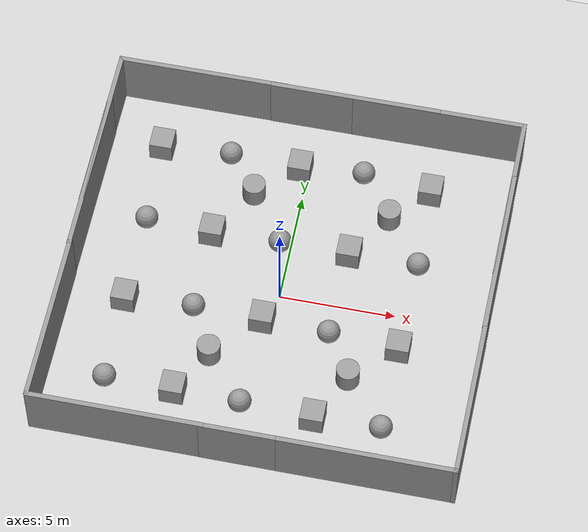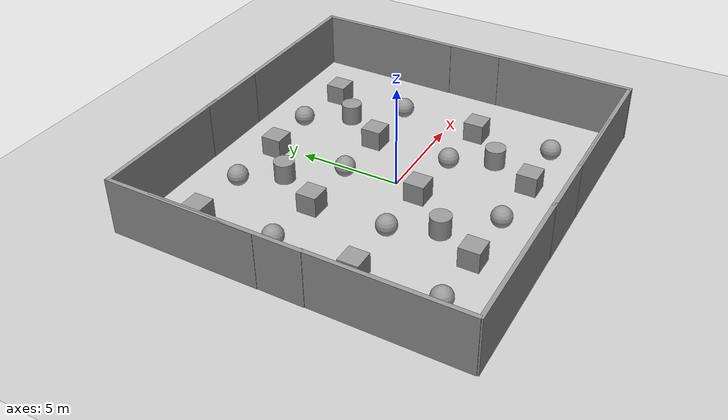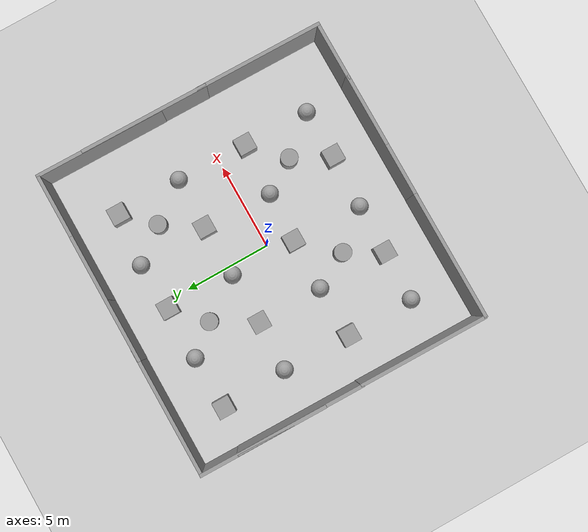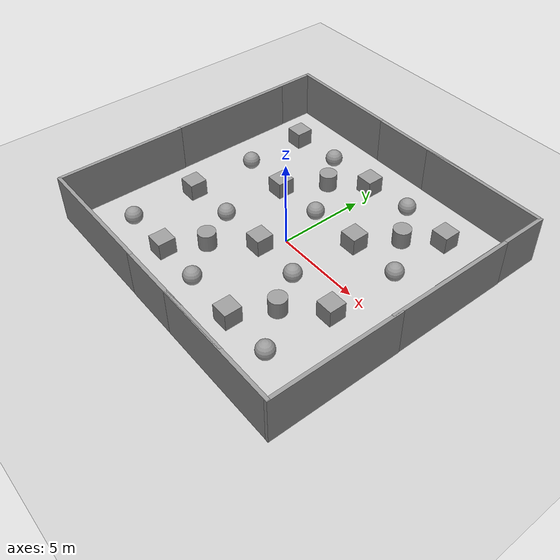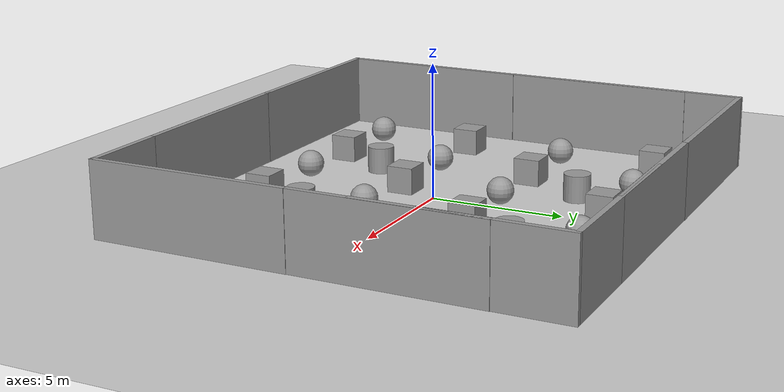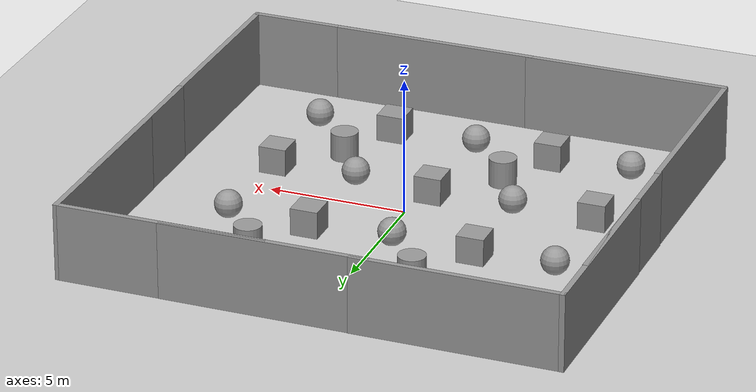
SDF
<sdf version="1.6">
 <world name="chase">
  <light name="sun" type="directional">
   <pose>0 0 10 0 -0 0</pose>
   <diffuse>0.8 0.8 0.8 1</diffuse>
   <specular>0.1 0.1 0.1 1</specular>
   <attenuation>
    <range>1000</range>
    <constant>0.9</constant>
    <linear>0.01</linear>
    <quadratic>0.001</quadratic>
   </attenuation>
   <direction>-0.5 0.5 -1</direction>
  </light>
  <model name="ground_plane">
   <static>1</static>
   <link name="link">
    <collision name="collision">
     <geometry><plane><normal>0 0 1</normal><size>100 100</size></plane></geometry>
     <surface><friction><ode><mu>100</mu><mu2>50</mu2></ode></friction></surface>
    </collision>
    <visual name="visual">
     <cast_shadows>0</cast_shadows>
     <geometry><plane><normal>0 0 1</normal><size>100 100</size></plane></geometry>
     <material>
      <script><uri>file://media/materials/scripts/gazebo.material</uri><name>Gazebo/Grey</name></script>
     </material>
    </visual>
   </link>
  </model>
  <gravity>0 0 -9.8</gravity>
  <magnetic_field>6e-06 2.3e-05 -4.2e-05</magnetic_field>
  <atmosphere type="adiabatic"/>
  <physics name="default_physics" default="0" type="ode">
   <max_step_size>0.001</max_step_size>
   <real_time_factor>1</real_time_factor>
   <real_time_update_rate>1000</real_time_update_rate>
  </physics>
  <scene><ambient>0.4 0.4 0.4 1</ambient><background>0.7 0.7 0.7 1</background><shadows>1</shadows></scene>
  <spherical_coordinates>
   <surface_model>EARTH_WGS84</surface_model>
   <latitude_deg>0</latitude_deg>
   <longitude_deg>0</longitude_deg>
   <elevation>0</elevation>
   <heading_deg>0</heading_deg>
  </spherical_coordinates>
  <model name="grey_wall">
   <static>1</static>
   <link name="link">
    <pose>0 0 1.4 0 -0 0</pose>
    <collision name="collision"><geometry><box><size>7.5 0.2 2.8</size></box></geometry></collision>
    <visual name="visual">
     <cast_shadows>0</cast_shadows>
     <geometry><box><size>7.5 0.2 2.8</size></box></geometry>
     <material>
      <script>
       <uri>model://grey_wall/materials/scripts</uri>
       <uri>model://grey_wall/materials/textures</uri>
       <name>vrc/grey_wall</name>
      </script>
     </material>
    </visual>
   </link>
   <pose>-5.31955 -8.0721 0 0 -0 0</pose>
  </model>
  <model name="grey_wall_clone">
   <static>1</static>
   <link name="link">
    <pose>0 0 1.4 0 -0 0</pose>
    <collision name="collision"><geometry><box><size>7.5 0.2 2.8</size></box></geometry></collision>
    <visual name="visual">
     <cast_shadows>0</cast_shadows>
     <geometry><box><size>7.5 0.2 2.8</size></box></geometry>
     <material>
      <script>
       <uri>model://grey_wall/materials/scripts</uri>
       <uri>model://grey_wall/materials/textures</uri>
       <name>vrc/grey_wall</name>
      </script>
     </material>
    </visual>
   </link>
   <pose>1.94381 -8.08113 0 0 -0 0</pose>
  </model>
  <model name="grey_wall_clone_0">
   <static>1</static>
   <link name="link">
    <pose>0 0 1.4 0 -0 0</pose>
    <collision name="collision"><geometry><box><size>7.5 0.2 2.8</size></box></geometry></collision>
    <visual name="visual">
     <cast_shadows>0</cast_shadows>
     <geometry><box><size>7.5 0.2 2.8</size></box></geometry>
     <material>
      <script>
       <uri>model://grey_wall/materials/scripts</uri>
       <uri>model://grey_wall/materials/textures</uri>
       <name>vrc/grey_wall</name>
      </script>
     </material>
    </visual>
   </link>
   <pose>5.18635 -8.08529 0 0 -0 0</pose>
  </model>
  <model name="grey_wall_clone_1">
   <static>1</static>
   <link name="link">
    <pose>0 0 1.4 0 -0 0</pose>
    <collision name="collision"><geometry><box><size>7.5 0.2 2.8</size></box></geometry></collision>
    <visual name="visual">
     <cast_shadows>0</cast_shadows>
     <geometry><box><size>7.5 0.2 2.8</size></box></geometry>
     <material>
      <script>
       <uri>model://grey_wall/materials/scripts</uri>
       <uri>model://grey_wall/materials/textures</uri>
       <name>vrc/grey_wall</name>
      </script>
     </material>
    </visual>
   </link>
   <pose>-5.2187 8.89135 0 0 -0 0</pose>
  </model>
  <model name="grey_wall_clone_2">
   <static>1</static>
   <link name="link">
    <pose>0 0 1.4 0 -0 0</pose>
    <collision name="collision"><geometry><box><size>7.5 0.2 2.8</size></box></geometry></collision>
    <visual name="visual">
     <cast_shadows>0</cast_shadows>
     <geometry><box><size>7.5 0.2 2.8</size></box></geometry>
     <material>
      <script>
       <uri>model://grey_wall/materials/scripts</uri>
       <uri>model://grey_wall/materials/textures</uri>
       <name>vrc/grey_wall</name>
      </script>
     </material>
    </visual>
   </link>
   <pose>1.56864 8.87538 0 0 -0 0</pose>
  </model>
  <model name="grey_wall_clone_2_clone">
   <static>1</static>
   <link name="link">
    <pose>0 0 1.4 0 -0 0</pose>
    <collision name="collision"><geometry><box><size>7.5 0.2 2.8</size></box></geometry></collision>
    <visual name="visual">
     <cast_shadows>0</cast_shadows>
     <geometry><box><size>7.5 0.2 2.8</size></box></geometry>
     <material>
      <script>
       <uri>model://grey_wall/materials/scripts</uri>
       <uri>model://grey_wall/materials/textures</uri>
       <name>vrc/grey_wall</name>
      </script>
     </material>
    </visual>
   </link>
   <pose>5.21808 8.86699 0 0 -0 0</pose>
  </model>
  <model name="grey_wall_clone_2_clone_0">
   <static>1</static>
   <link name="link">
    <pose>0 0 1.4 0 -0 0</pose>
    <collision name="collision"><geometry><box><size>7.5 0.2 2.8</size></box></geometry></collision>
    <visual name="visual">
     <cast_shadows>0</cast_shadows>
     <geometry><box><size>7.5 0.2 2.8</size></box></geometry>
     <material>
      <script>
       <uri>model://grey_wall/materials/scripts</uri>
       <uri>model://grey_wall/materials/textures</uri>
       <name>vrc/grey_wall</name>
      </script>
     </material>
    </visual>
   </link>
   <pose>-8.96704 -4.34279 0 0 0 -1.58054</pose>
  </model>
  <model name="grey_wall_clone_2_clone_0_clone">
   <static>1</static>
   <link name="link">
    <pose>0 0 1.4 0 -0 0</pose>
    <collision name="collision"><geometry><box><size>7.5 0.2 2.8</size></box></geometry></collision>
    <visual name="visual">
     <cast_shadows>0</cast_shadows>
     <geometry><box><size>7.5 0.2 2.8</size></box></geometry>
     <material>
      <script>
       <uri>model://grey_wall/materials/scripts</uri>
       <uri>model://grey_wall/materials/textures</uri>
       <name>vrc/grey_wall</name>
      </script>
     </material>
    </visual>
   </link>
   <pose>-8.91912 2.99652 0 0 0 -1.58054</pose>
  </model>
  <model name="grey_wall_clone_2_clone_0_clone_0">
   <static>1</static>
   <link name="link">
    <pose>0 0 1.4 0 -0 0</pose>
    <collision name="collision"><geometry><box><size>7.5 0.2 2.8</size></box></geometry></collision>
    <visual name="visual">
     <cast_shadows>0</cast_shadows>
     <geometry><box><size>7.5 0.2 2.8</size></box></geometry>
     <material>
      <script>
       <uri>model://grey_wall/materials/scripts</uri>
       <uri>model://grey_wall/materials/textures</uri>
       <name>vrc/grey_wall</name>
      </script>
     </material>
    </visual>
   </link>
   <pose>-8.91563 5.24699 0 0 0 -1.58054</pose>
  </model>
  <model name="grey_wall_clone_2_clone_0_clone_1">
   <static>1</static>
   <link name="link">
    <pose>0 0 1.4 0 -0 0</pose>
    <collision name="collision"><geometry><box><size>7.5 0.2 2.8</size></box></geometry></collision>
    <visual name="visual">
     <cast_shadows>0</cast_shadows>
     <geometry><box><size>7.5 0.2 2.8</size></box></geometry>
     <material>
      <script>
       <uri>model://grey_wall/materials/scripts</uri>
       <uri>model://grey_wall/materials/textures</uri>
       <name>vrc/grey_wall</name>
      </script>
     </material>
    </visual>
   </link>
   <pose>8.91344 -4.44352 0 0 0 -1.58054</pose>
  </model>
  <model name="grey_wall_clone_2_clone_0_clone_2">
   <static>1</static>
   <link name="link">
    <pose>0 0 1.4 0 -0 0</pose>
    <collision name="collision"><geometry><box><size>7.5 0.2 2.8</size></box></geometry></collision>
    <visual name="visual">
     <cast_shadows>0</cast_shadows>
     <geometry><box><size>7.5 0.2 2.8</size></box></geometry>
     <material>
      <script>
       <uri>model://grey_wall/materials/scripts</uri>
       <uri>model://grey_wall/materials/textures</uri>
       <name>vrc/grey_wall</name>
      </script>
     </material>
    </visual>
   </link>
   <pose>8.96392 2.48264 0 0 0 -1.58054</pose>
  </model>
  <model name="grey_wall_clone_2_clone_0_clone_3">
   <static>1</static>
   <link name="link">
    <pose>0 0 1.4 0 -0 0</pose>
    <collision name="collision"><geometry><box><size>7.5 0.2 2.8</size></box></geometry></collision>
    <visual name="visual">
     <cast_shadows>0</cast_shadows>
     <geometry><box><size>7.5 0.2 2.8</size></box></geometry>
     <material>
      <script>
       <uri>model://grey_wall/materials/scripts</uri>
       <uri>model://grey_wall/materials/textures</uri>
       <name>vrc/grey_wall</name>
      </script>
     </material>
    </visual>
   </link>
   <pose>8.96917 5.20949 0 0 0 -1.58054</pose>
  </model>
  <model name="unit_box_1">
   <pose>-3.49397 -5.4374 0.499995 -1e-05 0 0</pose>
   <link name="link">
    <inertial>
     <mass>1</mass>
     <inertia>
      <ixx>0.166667</ixx>
      <ixy>0</ixy>
      <ixz>0</ixz>
      <iyy>0.166667</iyy>
      <iyz>0</iyz>
      <izz>0.166667</izz>
     </inertia>
    </inertial>
    <collision name="collision"><geometry><box><size>1 1 1</size></box></geometry></collision>
    <visual name="visual">
     <geometry><box><size>1 1 1</size></box></geometry>
     <material>
      <script><name>Gazebo/Grey</name><uri>file://media/materials/scripts/gazebo.material</uri></script>
     </material>
    </visual>
   </link>
  </model>
  <model name="unit_box_3">
   <pose>2.51566 -5.59157 0.499995 -1e-05 0 0</pose>
   <link name="link">
    <inertial>
     <mass>1</mass>
     <inertia>
      <ixx>0.166667</ixx>
      <ixy>0</ixy>
      <ixz>0</ixz>
      <iyy>0.166667</iyy>
      <iyz>0</iyz>
      <izz>0.166667</izz>
     </inertia>
    </inertial>
    <collision name="collision"><geometry><box><size>1 1 1</size></box></geometry></collision>
    <visual name="visual">
     <geometry><box><size>1 1 1</size></box></geometry>
     <material>
      <script><name>Gazebo/Grey</name><uri>file://media/materials/scripts/gazebo.material</uri></script>
     </material>
    </visual>
   </link>
  </model>
  <model name="unit_box_6">
   <pose>-6.47649 -1.48881 0.499995 0 -1e-05 0</pose>
   <link name="link">
    <inertial>
     <mass>1</mass>
     <inertia>
      <ixx>0.166667</ixx>
      <ixy>0</ixy>
      <ixz>0</ixz>
      <iyy>0.166667</iyy>
      <iyz>0</iyz>
      <izz>0.166667</izz>
     </inertia>
    </inertial>
    <collision name="collision"><geometry><box><size>1 1 1</size></box></geometry></collision>
    <visual name="visual">
     <geometry><box><size>1 1 1</size></box></geometry>
     <material>
      <script><name>Gazebo/Grey</name><uri>file://media/materials/scripts/gazebo.material</uri></script>
     </material>
    </visual>
   </link>
  </model>
  <model name="unit_box_7">
   <pose>-0.500146 -1.38682 0.499995 -1e-05 0 0</pose>
   <link name="link">
    <inertial>
     <mass>1</mass>
     <inertia>
      <ixx>0.166667</ixx>
      <ixy>0</ixy>
      <ixz>0</ixz>
      <iyy>0.166667</iyy>
      <iyz>0</iyz>
      <izz>0.166667</izz>
     </inertia>
    </inertial>
    <collision name="collision"><geometry><box><size>1 1 1</size></box></geometry></collision>
    <visual name="visual">
     <geometry><box><size>1 1 1</size></box></geometry>
     <material>
      <script><name>Gazebo/Grey</name><uri>file://media/materials/scripts/gazebo.material</uri></script>
     </material>
    </visual>
   </link>
  </model>
  <model name="unit_box_10">
   <pose>-6.53838 6.33009 0.499995 0 -1e-05 0</pose>
   <link name="link">
    <inertial>
     <mass>1</mass>
     <inertia>
      <ixx>0.166667</ixx>
      <ixy>0</ixy>
      <ixz>0</ixz>
      <iyy>0.166667</iyy>
      <iyz>0</iyz>
      <izz>0.166667</izz>
     </inertia>
    </inertial>
    <collision name="collision"><geometry><box><size>1 1 1</size></box></geometry></collision>
    <visual name="visual">
     <geometry><box><size>1 1 1</size></box></geometry>
     <material>
      <script><name>Gazebo/Grey</name><uri>file://media/materials/scripts/gazebo.material</uri></script>
     </material>
    </visual>
   </link>
  </model>
  <model name="unit_box_11">
   <pose>-3.48163 2.41511 0.499995 -1e-05 0 0</pose>
   <link name="link">
    <inertial>
     <mass>1</mass>
     <inertia>
      <ixx>0.166667</ixx>
      <ixy>0</ixy>
      <ixz>0</ixz>
      <iyy>0.166667</iyy>
      <iyz>0</iyz>
      <izz>0.166667</izz>
     </inertia>
    </inertial>
    <collision name="collision"><geometry><box><size>1 1 1</size></box></geometry></collision>
    <visual name="visual">
     <geometry><box><size>1 1 1</size></box></geometry>
     <material>
      <script><name>Gazebo/Grey</name><uri>file://media/materials/scripts/gazebo.material</uri></script>
     </material>
    </visual>
   </link>
  </model>
  <model name="unit_box_13">
   <pose>2.52991 2.51567 0.499995 -1e-05 0 0</pose>
   <link name="link">
    <inertial>
     <mass>1</mass>
     <inertia>
      <ixx>0.166667</ixx>
      <ixy>0</ixy>
      <ixz>0</ixz>
      <iyy>0.166667</iyy>
      <iyz>0</iyz>
      <izz>0.166667</izz>
     </inertia>
    </inertial>
    <collision name="collision"><geometry><box><size>1 1 1</size></box></geometry></collision>
    <visual name="visual">
     <geometry><box><size>1 1 1</size></box></geometry>
     <material>
      <script><name>Gazebo/Grey</name><uri>file://media/materials/scripts/gazebo.material</uri></script>
     </material>
    </visual>
   </link>
  </model>
  <model name="unit_box_15">
   <pose>5.43386 -1.65291 0.499995 -1e-05 0 0</pose>
   <link name="link">
    <inertial>
     <mass>1</mass>
     <inertia>
      <ixx>0.166667</ixx>
      <ixy>0</ixy>
      <ixz>0</ixz>
      <iyy>0.166667</iyy>
      <iyz>0</iyz>
      <izz>0.166667</izz>
     </inertia>
    </inertial>
    <collision name="collision"><geometry><box><size>1 1 1</size></box></geometry></collision>
    <visual name="visual">
     <geometry><box><size>1 1 1</size></box></geometry>
     <material>
      <script><name>Gazebo/Grey</name><uri>file://media/materials/scripts/gazebo.material</uri></script>
     </material>
    </visual>
   </link>
  </model>
  <model name="unit_box_17">
   <pose>-0.376264 6.39191 0.499995 -1e-05 0 0</pose>
   <link name="link">
    <inertial>
     <mass>1</mass>
     <inertia>
      <ixx>0.166667</ixx>
      <ixy>0</ixy>
      <ixz>0</ixz>
      <iyy>0.166667</iyy>
      <iyz>0</iyz>
      <izz>0.166667</izz>
     </inertia>
    </inertial>
    <collision name="collision"><geometry><box><size>1 1 1</size></box></geometry></collision>
    <visual name="visual">
     <geometry><box><size>1 1 1</size></box></geometry>
     <material>
      <script><name>Gazebo/Grey</name><uri>file://media/materials/scripts/gazebo.material</uri></script>
     </material>
    </visual>
   </link>
  </model>
  <model name="unit_box_19">
   <pose>5.44874 6.2703 0.499995 1e-05 -0 0</pose>
   <link name="link">
    <inertial>
     <mass>1</mass>
     <inertia>
      <ixx>0.166667</ixx>
      <ixy>0</ixy>
      <ixz>0</ixz>
      <iyy>0.166667</iyy>
      <iyz>0</iyz>
      <izz>0.166667</izz>
     </inertia>
    </inertial>
    <collision name="collision"><geometry><box><size>1 1 1</size></box></geometry></collision>
    <visual name="visual">
     <geometry><box><size>1 1 1</size></box></geometry>
     <material>
      <script><name>Gazebo/Grey</name><uri>file://media/materials/scripts/gazebo.material</uri></script>
     </material>
    </visual>
   </link>
  </model>
  <model name="unit_sphere_0">
   <pose>-6.39698 2.49343 0.5 0 -0 0</pose>
   <link name="link">
    <inertial>
     <mass>1</mass>
     <inertia><ixx>0.1</ixx><ixy>0</ixy><ixz>0</ixz><iyy>0.1</iyy><iyz>0</iyz><izz>0.1</izz></inertia>
    </inertial>
    <collision name="collision"><geometry><sphere><radius>0.5</radius></sphere></geometry></collision>
    <visual name="visual">
     <geometry><sphere><radius>0.5</radius></sphere></geometry>
     <material>
      <script><name>Gazebo/Grey</name><uri>file://media/materials/scripts/gazebo.material</uri></script>
     </material>
    </visual>
   </link>
  </model>
  <model name="unit_sphere_1">
   <pose>-3.47508 6.4347 0.5 0 -0 0</pose>
   <link name="link">
    <inertial>
     <mass>1</mass>
     <inertia><ixx>0.1</ixx><ixy>0</ixy><ixz>0</ixz><iyy>0.1</iyy><iyz>0</iyz><izz>0.1</izz></inertia>
    </inertial>
    <collision name="collision"><geometry><sphere><radius>0.5</radius></sphere></geometry></collision>
    <visual name="visual">
     <geometry><sphere><radius>0.5</radius></sphere></geometry>
     <material>
      <script><name>Gazebo/Grey</name><uri>file://media/materials/scripts/gazebo.material</uri></script>
     </material>
    </visual>
   </link>
  </model>
  <model name="unit_sphere_2">
   <pose>-6.44581 -5.43443 0.5 0 -0 0</pose>
   <link name="link">
    <inertial>
     <mass>1</mass>
     <inertia><ixx>0.1</ixx><ixy>0</ixy><ixz>0</ixz><iyy>0.1</iyy><iyz>0</iyz><izz>0.1</izz></inertia>
    </inertial>
    <collision name="collision"><geometry><sphere><radius>0.5</radius></sphere></geometry></collision>
    <visual name="visual">
     <geometry><sphere><radius>0.5</radius></sphere></geometry>
     <material>
      <script><name>Gazebo/Grey</name><uri>file://media/materials/scripts/gazebo.material</uri></script>
     </material>
    </visual>
   </link>
  </model>
  <model name="unit_sphere_3">
   <pose>-3.48772 -1.38318 0.5 0 -0 0</pose>
   <link name="link">
    <inertial>
     <mass>1</mass>
     <inertia><ixx>0.1</ixx><ixy>0</ixy><ixz>0</ixz><iyy>0.1</iyy><iyz>0</iyz><izz>0.1</izz></inertia>
    </inertial>
    <collision name="collision"><geometry><sphere><radius>0.5</radius></sphere></geometry></collision>
    <visual name="visual">
     <geometry><sphere><radius>0.5</radius></sphere></geometry>
     <material>
      <script><name>Gazebo/Grey</name><uri>file://media/materials/scripts/gazebo.material</uri></script>
     </material>
    </visual>
   </link>
  </model>
  <model name="unit_sphere_4">
   <pose>-0.617832 -5.51488 0.5 0 -0 0</pose>
   <link name="link">
    <inertial>
     <mass>1</mass>
     <inertia><ixx>0.1</ixx><ixy>0</ixy><ixz>0</ixz><iyy>0.1</iyy><iyz>0</iyz><izz>0.1</izz></inertia>
    </inertial>
    <collision name="collision"><geometry><sphere><radius>0.5</radius></sphere></geometry></collision>
    <visual name="visual">
     <geometry><sphere><radius>0.5</radius></sphere></geometry>
     <material>
      <script><name>Gazebo/Grey</name><uri>file://media/materials/scripts/gazebo.material</uri></script>
     </material>
    </visual>
   </link>
  </model>
  <model name="unit_sphere_5">
   <pose>2.4122 -1.53892 0.5 0 -0 0</pose>
   <link name="link">
    <inertial>
     <mass>1</mass>
     <inertia><ixx>0.1</ixx><ixy>0</ixy><ixz>0</ixz><iyy>0.1</iyy><iyz>0</iyz><izz>0.1</izz></inertia>
    </inertial>
    <collision name="collision"><geometry><sphere><radius>0.5</radius></sphere></geometry></collision>
    <visual name="visual">
     <geometry><sphere><radius>0.5</radius></sphere></geometry>
     <material>
      <script><name>Gazebo/Grey</name><uri>file://media/materials/scripts/gazebo.material</uri></script>
     </material>
    </visual>
   </link>
  </model>
  <model name="unit_sphere_6">
   <pose>5.38998 -5.55849 0.5 0 -0 0</pose>
   <link name="link">
    <inertial>
     <mass>1</mass>
     <inertia><ixx>0.1</ixx><ixy>0</ixy><ixz>0</ixz><iyy>0.1</iyy><iyz>0</iyz><izz>0.1</izz></inertia>
    </inertial>
    <collision name="collision"><geometry><sphere><radius>0.5</radius></sphere></geometry></collision>
    <visual name="visual">
     <geometry><sphere><radius>0.5</radius></sphere></geometry>
     <material>
      <script><name>Gazebo/Grey</name><uri>file://media/materials/scripts/gazebo.material</uri></script>
     </material>
    </visual>
   </link>
  </model>
  <model name="unit_sphere_7">
   <pose>5.55234 2.47338 0.5 0 -0 0</pose>
   <link name="link">
    <inertial>
     <mass>1</mass>
     <inertia><ixx>0.1</ixx><ixy>0</ixy><ixz>0</ixz><iyy>0.1</iyy><iyz>0</iyz><izz>0.1</izz></inertia>
    </inertial>
    <collision name="collision"><geometry><sphere><radius>0.5</radius></sphere></geometry></collision>
    <visual name="visual">
     <geometry><sphere><radius>0.5</radius></sphere></geometry>
     <material>
      <script><name>Gazebo/Grey</name><uri>file://media/materials/scripts/gazebo.material</uri></script>
     </material>
    </visual>
   </link>
  </model>
  <model name="unit_sphere_8">
   <pose>2.42668 6.57079 0.5 0 -0 0</pose>
   <link name="link">
    <inertial>
     <mass>1</mass>
     <inertia><ixx>0.1</ixx><ixy>0</ixy><ixz>0</ixz><iyy>0.1</iyy><iyz>0</iyz><izz>0.1</izz></inertia>
    </inertial>
    <collision name="collision"><geometry><sphere><radius>0.5</radius></sphere></geometry></collision>
    <visual name="visual">
     <geometry><sphere><radius>0.5</radius></sphere></geometry>
     <material>
      <script><name>Gazebo/Grey</name><uri>file://media/materials/scripts/gazebo.material</uri></script>
     </material>
    </visual>
   </link>
  </model>
  <model name="unit_sphere_9">
   <pose>-0.493625 2.44691 0.5 0 -0 0</pose>
   <link name="link">
    <inertial>
     <mass>1</mass>
     <inertia><ixx>0.1</ixx><ixy>0</ixy><ixz>0</ixz><iyy>0.1</iyy><iyz>0</iyz><izz>0.1</izz></inertia>
    </inertial>
    <collision name="collision"><geometry><sphere><radius>0.5</radius></sphere></geometry></collision>
    <visual name="visual">
     <geometry><sphere><radius>0.5</radius></sphere></geometry>
     <material>
      <script><name>Gazebo/Grey</name><uri>file://media/materials/scripts/gazebo.material</uri></script>
     </material>
    </visual>
   </link>
  </model>
  <model name="unit_cylinder_0_0">
   <pose>-2.38465 -3.41205 0.499993 -3e-06 -3e-06 0</pose>
   <link name="link">
    <inertial>
     <mass>1</mass>
     <inertia><ixx>0.145833</ixx><ixy>0</ixy><ixz>0</ixz><iyy>0.145833</iyy><iyz>0</iyz><izz>0.125</izz></inertia>
    </inertial>
    <collision name="collision">
     <geometry><cylinder><radius>0.5</radius><length>1</length></cylinder></geometry>
    </collision>
    <visual name="visual">
     <geometry><cylinder><radius>0.5</radius><length>1</length></cylinder></geometry>
     <material>
      <script><name>Gazebo/Grey</name><uri>file://media/materials/scripts/gazebo.material</uri></script>
     </material>
    </visual>
   </link>
  </model>
  <model name="unit_cylinder_0_1">
   <pose>-2.11282 4.77255 0.499997 3e-06 4e-06 -0</pose>
   <link name="link">
    <inertial>
     <mass>1</mass>
     <inertia><ixx>0.145833</ixx><ixy>0</ixy><ixz>0</ixz><iyy>0.145833</iyy><iyz>0</iyz><izz>0.125</izz></inertia>
    </inertial>
    <collision name="collision">
     <geometry><cylinder><radius>0.5</radius><length>1</length></cylinder></geometry>
    </collision>
    <visual name="visual">
     <geometry><cylinder><radius>0.5</radius><length>1</length></cylinder></geometry>
     <material>
      <script><name>Gazebo/Grey</name><uri>file://media/materials/scripts/gazebo.material</uri></script>
     </material>
    </visual>
   </link>
  </model>
  <model name="unit_cylinder_0_2">
   <pose>3.58841 -3.41944 0.499993 -3e-06 -4e-06 -0</pose>
   <link name="link">
    <inertial>
     <mass>1</mass>
     <inertia><ixx>0.145833</ixx><ixy>0</ixy><ixz>0</ixz><iyy>0.145833</iyy><iyz>0</iyz><izz>0.125</izz></inertia>
    </inertial>
    <collision name="collision">
     <geometry><cylinder><radius>0.5</radius><length>1</length></cylinder></geometry>
    </collision>
    <visual name="visual">
     <geometry><cylinder><radius>0.5</radius><length>1</length></cylinder></geometry>
     <material>
      <script><name>Gazebo/Grey</name><uri>file://media/materials/scripts/gazebo.material</uri></script>
     </material>
    </visual>
   </link>
  </model>
  <model name="unit_cylinder_0_3">
   <pose>3.89779 4.65109 0.499997 3e-06 4e-06 -0</pose>
   <link name="link">
    <inertial>
     <mass>1</mass>
     <inertia><ixx>0.145833</ixx><ixy>0</ixy><ixz>0</ixz><iyy>0.145833</iyy><iyz>0</iyz><izz>0.125</izz></inertia>
    </inertial>
    <collision name="collision">
     <geometry><cylinder><radius>0.5</radius><length>1</length></cylinder></geometry>
    </collision>
    <visual name="visual">
     <geometry><cylinder><radius>0.5</radius><length>1</length></cylinder></geometry>
     <material>
      <script><name>Gazebo/Grey</name><uri>file://media/materials/scripts/gazebo.material</uri></script>
     </material>
    </visual>
   </link>
  </model>
 </world>
</sdf>
